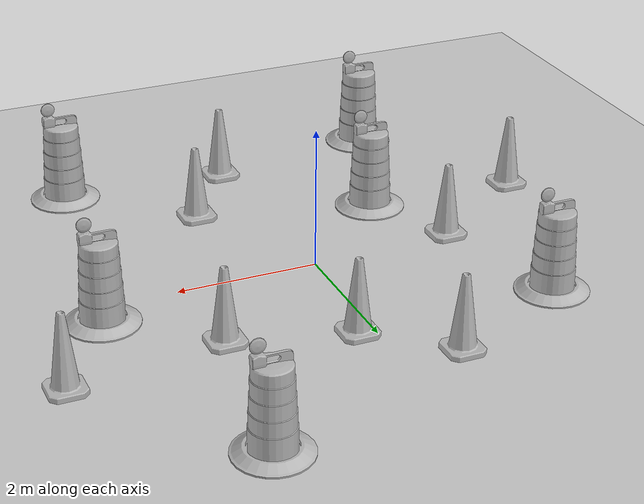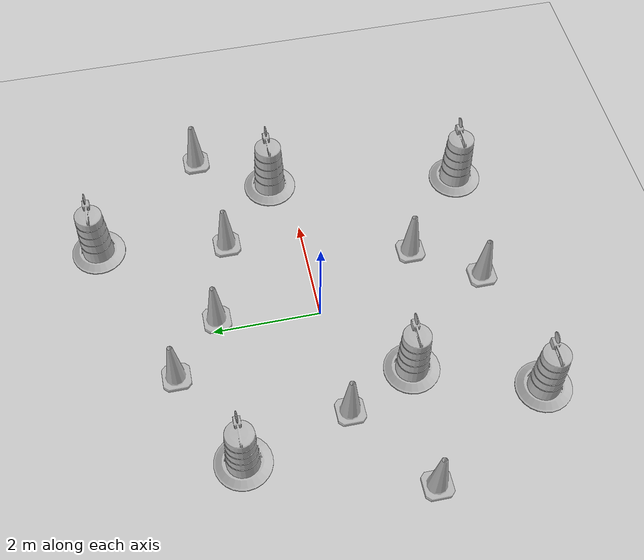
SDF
<sdf version="1.7">
 <world name="default">
  <light name="sun" type="directional">
   <pose>0 0 10 0 -0 0</pose>
   <diffuse>0.8 0.8 0.8 1</diffuse>
   <specular>0.2 0.2 0.2 1</specular>
   <attenuation>
    <range>1000</range>
    <constant>0.9</constant>
    <linear>0.01</linear>
    <quadratic>0.001</quadratic>
   </attenuation>
   <direction>-0.5 0.1 -0.9</direction>
   <spot><inner_angle>0</inner_angle><outer_angle>0</outer_angle><falloff>0</falloff></spot>
  </light>
  <model name="ground_plane">
   <static>1</static>
   <link name="link">
    <collision name="collision">
     <geometry><plane><normal>0 0 1</normal><size>100 100</size></plane></geometry>
     <surface><friction><ode><mu>100</mu><mu2>50</mu2></ode></friction></surface>
    </collision>
    <visual name="visual">
     <cast_shadows>0</cast_shadows>
     <geometry><plane><normal>0 0 1</normal><size>100 100</size></plane></geometry>
     <material>
      <script><uri>file://media/materials/scripts/gazebo.material</uri><name>Gazebo/Grey</name></script>
     </material>
    </visual>
   </link>
  </model>
  <gravity>0 0 -9.8</gravity>
  <magnetic_field>6e-06 2.3e-05 -4.2e-05</magnetic_field>
  <atmosphere type="adiabatic"/>
  <physics type="ode">
   <max_step_size>0.001</max_step_size>
   <real_time_factor>1</real_time_factor>
   <real_time_update_rate>1000</real_time_update_rate>
  </physics>
  <scene><ambient>0.4 0.4 0.4 1</ambient><background>0.7 0.7 0.7 1</background><shadows>1</shadows></scene>
  <spherical_coordinates>
   <surface_model>EARTH_WGS84</surface_model>
   <latitude_deg>0</latitude_deg>
   <longitude_deg>0</longitude_deg>
   <elevation>0</elevation>
   <heading_deg>0</heading_deg>
  </spherical_coordinates>
  <model name="Construction Barrel">
   <link name="link">
    <inertial>
     <pose>0 0 0.4 0 -0 0</pose>
     <mass>500</mass>
     <inertia><ixx>51.2096</ixx><iyy>51.2096</iyy><izz>25</izz><ixy>0</ixy><ixz>0</ixz><iyz>0</iyz></inertia>
    </inertial>
    <collision name="collision">
     <geometry><mesh><uri>model://construction_barrel/meshes/construction_barrel.dae</uri></mesh></geometry>
    </collision>
    <visual name="visual">
     <geometry><mesh><uri>model://construction_barrel/meshes/construction_barrel.dae</uri></mesh></geometry>
    </visual>
   </link>
   <pose>-1.46091 -1.35868 -0 0 0 -2.4e-05</pose>
  </model>
  <model name="Construction Barrel_0">
   <link name="link">
    <inertial>
     <pose>0 0 0.4 0 -0 0</pose>
     <mass>500</mass>
     <inertia><ixx>51.2096</ixx><iyy>51.2096</iyy><izz>25</izz><ixy>0</ixy><ixz>0</ixz><iyz>0</iyz></inertia>
    </inertial>
    <collision name="collision">
     <geometry><mesh><uri>model://construction_barrel/meshes/construction_barrel.dae</uri></mesh></geometry>
    </collision>
    <visual name="visual">
     <geometry><mesh><uri>model://construction_barrel/meshes/construction_barrel.dae</uri></mesh></geometry>
    </visual>
   </link>
   <pose>2.60759 -3.33249 -0 0 0 -2.2e-05</pose>
  </model>
  <model name="Construction Barrel_1">
   <link name="link">
    <inertial>
     <pose>0 0 0.4 0 -0 0</pose>
     <mass>500</mass>
     <inertia><ixx>51.2096</ixx><iyy>51.2096</iyy><izz>25</izz><ixy>0</ixy><ixz>0</ixz><iyz>0</iyz></inertia>
    </inertial>
    <collision name="collision">
     <geometry><mesh><uri>model://construction_barrel/meshes/construction_barrel.dae</uri></mesh></geometry>
    </collision>
    <visual name="visual">
     <geometry><mesh><uri>model://construction_barrel/meshes/construction_barrel.dae</uri></mesh></geometry>
    </visual>
   </link>
   <pose>2.2169 3.88758 -0 0 0 -2.1e-05</pose>
  </model>
  <model name="Construction Barrel_2">
   <link name="link">
    <inertial>
     <pose>0 0 0.4 0 -0 0</pose>
     <mass>500</mass>
     <inertia><ixx>51.2096</ixx><iyy>51.2096</iyy><izz>25</izz><ixy>0</ixy><ixz>0</ixz><iyz>0</iyz></inertia>
    </inertial>
    <collision name="collision">
     <geometry><mesh><uri>model://construction_barrel/meshes/construction_barrel.dae</uri></mesh></geometry>
    </collision>
    <visual name="visual">
     <geometry><mesh><uri>model://construction_barrel/meshes/construction_barrel.dae</uri></mesh></geometry>
    </visual>
   </link>
   <pose>-2.62325 1.88293 -0 0 0 -2e-05</pose>
  </model>
  <model name="Construction Barrel_3">
   <link name="link">
    <inertial>
     <pose>0 0 0.4 0 -0 0</pose>
     <mass>500</mass>
     <inertia><ixx>51.2096</ixx><iyy>51.2096</iyy><izz>25</izz><ixy>0</ixy><ixz>0</ixz><iyz>0</iyz></inertia>
    </inertial>
    <collision name="collision">
     <geometry><mesh><uri>model://construction_barrel/meshes/construction_barrel.dae</uri></mesh></geometry>
    </collision>
    <visual name="visual">
     <geometry><mesh><uri>model://construction_barrel/meshes/construction_barrel.dae</uri></mesh></geometry>
    </visual>
   </link>
   <pose>3.15237 0.372179 -3e-06 -1.1e-05 3e-06 -1.9e-05</pose>
  </model>
  <model name="Construction Cone">
   <link name="link">
    <collision name="collision">
     <geometry>
      <mesh><scale>10 10 10</scale><uri>model://construction_cone/meshes/construction_cone.dae</uri></mesh>
     </geometry>
    </collision>
    <visual name="visual">
     <geometry>
      <mesh><scale>10 10 10</scale><uri>model://construction_cone/meshes/construction_cone.dae</uri></mesh>
     </geometry>
    </visual>
    <inertial>
     <inertia><ixx>1</ixx><ixy>0</ixy><ixz>0</ixz><iyy>1</iyy><iyz>0</iyz><izz>1</izz></inertia>
     <mass>1</mass>
    </inertial>
   </link>
   <pose>0.23485 1.89151 0 -0 -0 -0</pose>
  </model>
  <model name="Construction Cone_0">
   <link name="link">
    <collision name="collision">
     <geometry>
      <mesh><scale>10 10 10</scale><uri>model://construction_cone/meshes/construction_cone.dae</uri></mesh>
     </geometry>
    </collision>
    <visual name="visual">
     <geometry>
      <mesh><scale>10 10 10</scale><uri>model://construction_cone/meshes/construction_cone.dae</uri></mesh>
     </geometry>
    </visual>
    <inertial>
     <inertia><ixx>1</ixx><ixy>0</ixy><ixz>0</ixz><iyy>1</iyy><iyz>0</iyz><izz>1</izz></inertia>
     <mass>1</mass>
    </inertial>
   </link>
   <pose>-2.06825 -0.096869 -0 0 -0 0</pose>
  </model>
  <model name="Construction Cone_1">
   <link name="link">
    <collision name="collision">
     <geometry>
      <mesh><scale>10 10 10</scale><uri>model://construction_cone/meshes/construction_cone.dae</uri></mesh>
     </geometry>
    </collision>
    <visual name="visual">
     <geometry>
      <mesh><scale>10 10 10</scale><uri>model://construction_cone/meshes/construction_cone.dae</uri></mesh>
     </geometry>
    </visual>
    <inertial>
     <inertia><ixx>1</ixx><ixy>0</ixy><ixz>0</ixz><iyy>1</iyy><iyz>0</iyz><izz>1</izz></inertia>
     <mass>1</mass>
    </inertial>
   </link>
   <pose>1.01706 -1.99005 -0 0 -0 0</pose>
  </model>
  <model name="Construction Cone_2">
   <link name="link">
    <collision name="collision">
     <geometry>
      <mesh><scale>10 10 10</scale><uri>model://construction_cone/meshes/construction_cone.dae</uri></mesh>
     </geometry>
    </collision>
    <visual name="visual">
     <geometry>
      <mesh><scale>10 10 10</scale><uri>model://construction_cone/meshes/construction_cone.dae</uri></mesh>
     </geometry>
    </visual>
    <inertial>
     <inertia><ixx>1</ixx><ixy>0</ixy><ixz>0</ixz><iyy>1</iyy><iyz>0</iyz><izz>1</izz></inertia>
     <mass>1</mass>
    </inertial>
   </link>
   <pose>1.87125 1.45089 -1e-05 -1e-06 0 0</pose>
  </model>
  <model name="Construction Cone_3">
   <link name="link">
    <collision name="collision">
     <geometry>
      <mesh><scale>10 10 10</scale><uri>model://construction_cone/meshes/construction_cone.dae</uri></mesh>
     </geometry>
    </collision>
    <visual name="visual">
     <geometry>
      <mesh><scale>10 10 10</scale><uri>model://construction_cone/meshes/construction_cone.dae</uri></mesh>
     </geometry>
    </visual>
    <inertial>
     <inertia><ixx>1</ixx><ixy>0</ixy><ixz>0</ixz><iyy>1</iyy><iyz>0</iyz><izz>1</izz></inertia>
     <mass>1</mass>
    </inertial>
   </link>
   <pose>-3.67997 -1.21278 -0 0 -1e-06 0</pose>
  </model>
  <model name="Construction Cone_4">
   <link name="link">
    <collision name="collision">
     <geometry>
      <mesh><scale>10 10 10</scale><uri>model://construction_cone/meshes/construction_cone.dae</uri></mesh>
     </geometry>
    </collision>
    <visual name="visual">
     <geometry>
      <mesh><scale>10 10 10</scale><uri>model://construction_cone/meshes/construction_cone.dae</uri></mesh>
     </geometry>
    </visual>
    <inertial>
     <inertia><ixx>1</ixx><ixy>0</ixy><ixz>0</ixz><iyy>1</iyy><iyz>0</iyz><izz>1</izz></inertia>
     <mass>1</mass>
    </inertial>
   </link>
   <pose>0.208118 -3.17565 -0 1e-06 -0 0</pose>
  </model>
  <model name="Construction Cone_5">
   <link name="link">
    <collision name="collision">
     <geometry>
      <mesh><scale>10 10 10</scale><uri>model://construction_cone/meshes/construction_cone.dae</uri></mesh>
     </geometry>
    </collision>
    <visual name="visual">
     <geometry>
      <mesh><scale>10 10 10</scale><uri>model://construction_cone/meshes/construction_cone.dae</uri></mesh>
     </geometry>
    </visual>
    <inertial>
     <inertia><ixx>1</ixx><ixy>0</ixy><ixz>0</ixz><iyy>1</iyy><iyz>0</iyz><izz>1</izz></inertia>
     <mass>1</mass>
    </inertial>
   </link>
   <pose>4.03093 1.74382 -0 0 -0 0</pose>
  </model>
  <model name="Construction Barrel_4">
   <link name="link">
    <inertial>
     <pose>0 0 0.4 0 -0 0</pose>
     <mass>500</mass>
     <inertia><ixx>51.2096</ixx><iyy>51.2096</iyy><izz>25</izz><ixy>0</ixy><ixz>0</ixz><iyz>0</iyz></inertia>
    </inertial>
    <collision name="collision">
     <geometry><mesh><uri>model://construction_barrel/meshes/construction_barrel.dae</uri></mesh></geometry>
    </collision>
    <visual name="visual">
     <geometry><mesh><uri>model://construction_barrel/meshes/construction_barrel.dae</uri></mesh></geometry>
    </visual>
   </link>
   <pose>-2.28268 -3.5493 -1e-06 4e-06 -2e-06 -7e-06</pose>
  </model>
  <model name="Construction Cone_6">
   <link name="link">
    <collision name="collision">
     <geometry>
      <mesh><scale>10 10 10</scale><uri>model://construction_cone/meshes/construction_cone.dae</uri></mesh>
     </geometry>
    </collision>
    <visual name="visual">
     <geometry>
      <mesh><scale>10 10 10</scale><uri>model://construction_cone/meshes/construction_cone.dae</uri></mesh>
     </geometry>
    </visual>
    <inertial>
     <inertia><ixx>1</ixx><ixy>0</ixy><ixz>0</ixz><iyy>1</iyy><iyz>0</iyz><izz>1</izz></inertia>
     <mass>1</mass>
    </inertial>
   </link>
   <pose>-0.801059 2.77631 -0 0 -0 0</pose>
  </model>
 </world>
</sdf>
